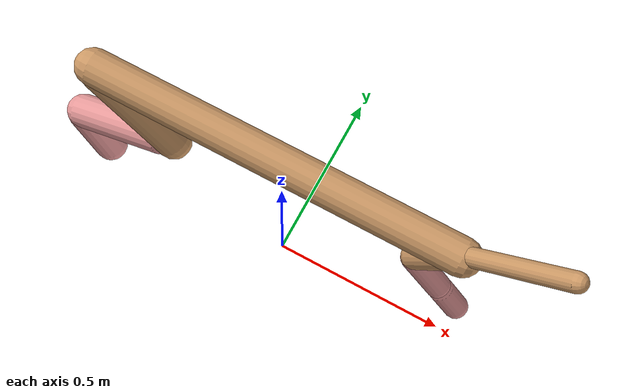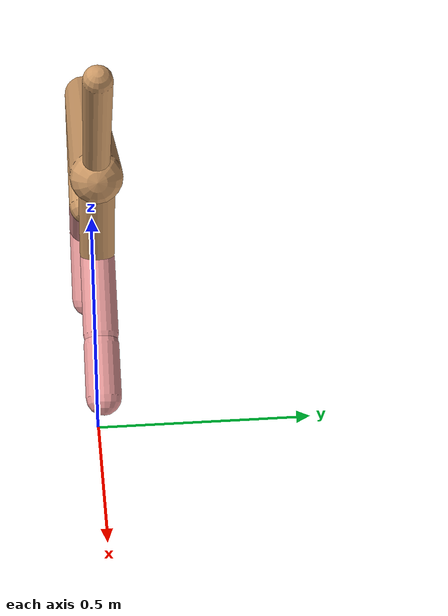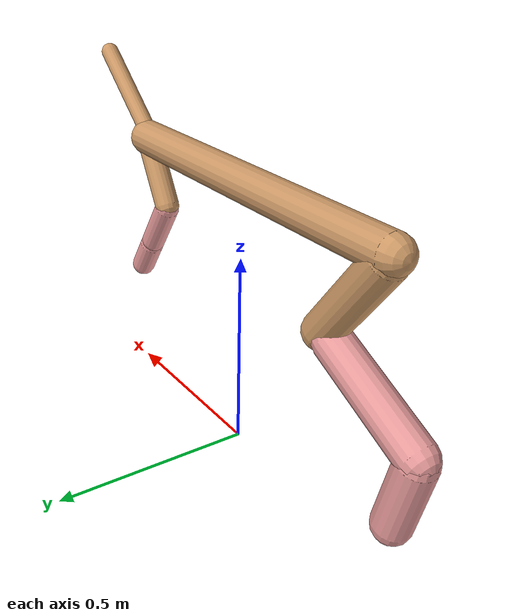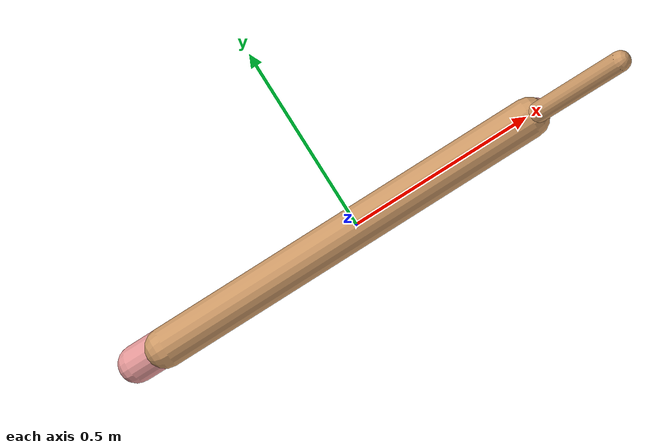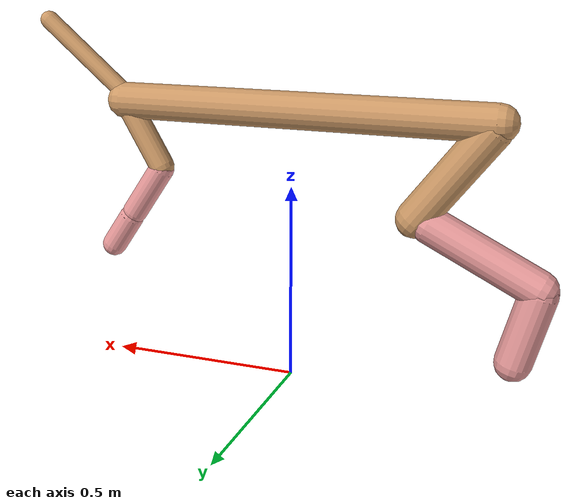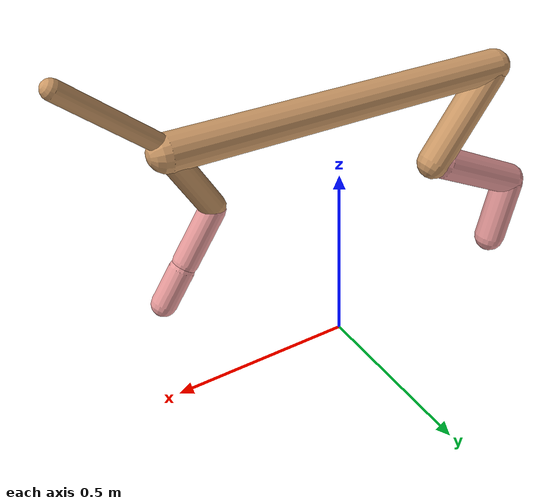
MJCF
<mujoco model="cheetah">
  <compiler angle="radian" coordinate="local" inertiafromgeom="true" settotalmass="14" />
  <default>
    <joint armature=".1" damping=".01" limited="true" solimplimit="0 .8 .03" solreflimit=".02 1" stiffness="8" />
    <geom conaffinity="0" condim="3" contype="1" friction="0.8 .1 .1" rgba="0.8 0.6 .4 1" solimp="0.0 0.8 0.01" solref="0.02 1" />
    <motor ctrllimited="true" ctrlrange="-1 1" />
  </default>
  <size nstack="300000" nuser_geom="1" />
  <option gravity="0 0 -9.81" timestep="0.01" />
  <worldbody>
    <body name="torso" pos="0.0 0.0 0.6927623443211219">
      <joint armature="0" axis="1 0 0" damping="0" limited="false" name="ignorex" pos="0 0 0" stiffness="0" type="slide" />
      <joint armature="0" axis="0 0 1" damping="0" limited="false" name="ignorez" pos="0 0 0" stiffness="0" type="slide" />
      <joint armature="0" axis="0 1 0" damping="0" limited="false" name="ignorey" pos="0 0 0" stiffness="0" type="hinge" />
      <geom fromto="-0.5 0.0 0.0 0.4526734944563274 0.0 0.0" name="torso" size="0.04659457876638631" type="capsule" />
      <geom axisangle="0 1 0 .87" name="head" pos="0.5526734944563273 0.0 0.1" size="0.02347839025324949 0.15" type="capsule" />

      <body name="bthigh" pos="-.5 0 0">
        <joint axis="0 1 0" damping="6" name="bthigh" pos="0 0 0" range="-.52 1.05" stiffness="240" type="hinge" />
        <geom axisangle="0 1 0 -3.8" name="bthigh" pos="0.09945773974588404 0.0 -0.12929506166964927" size="0.04648417371865151 0.14411062705640906" type="capsule" />
        <body name="bshin" pos="0.15891547949176807 0.0 -0.2485901233392985">
          <joint axis="0 1 0" damping="4.5" name="bshin" pos="0 0 0" range="-.785 .785" stiffness="180" type="hinge" />
          <geom axisangle="0 1 0 -2.03" name="bshin" pos="-0.13917709033411652 0.0 -0.06958854516705826" rgba="0.9 0.6 0.6 1" size="0.04648417371865151 0.14907995902387144" type="capsule" />
          <body name="bfoot" pos="-0.27835418066823303 0.0 -0.13917709033411652">
            <joint axis="0 1 0" damping="3" name="bfoot" pos="0 0 0" range="-.4 .785" stiffness="120" type="hinge" />
            <geom axisangle="0 1 0 -.27" name="bfoot" pos="0.029829644268562643 0.0 -0.09644918313501923" rgba="0.9 0.6 0.6 1" size="0.04648417371865151 0.09342344098829278" type="capsule" />
            <inertial mass="10" />
          </body>
        </body>
      </body>
      <body name="fthigh" pos="0.4526734944563273 0.0 0.0">
        <joint axis="0 1 0" damping="4.5" name="fthigh" pos="0 0 0" range="-1.5 0.8" stiffness="180" type="hinge" />
        <geom axisangle="0 1 0 .52" name="fthigh" pos="-0.04989554608158897 0.0 -0.0855352218541525" size="0.0322 0.0931" type="capsule" />
        <body name="fshin" pos="-0.09979109216317794 0.0 -0.171070443708305">
          <joint axis="0 1 0" damping="3" name="fshin" pos="0 0 0" range="-1.2 1.1" stiffness="120" type="hinge" />
          <geom axisangle="0 1 0 -.6" name="fshin" pos="0.046381400387749405 0.0 -0.06422040053688378" rgba="0.9 0.6 0.6 1" size="0.0322 0.07419999999999999" type="capsule" />
          <body name="ffoot" pos="0.09276280077549881 0.0 -0.12844080107376757">
            <joint axis="0 1 0" damping="1.5" name="ffoot" pos="0 0 0" range="-3.1 -0.3" stiffness="60" type="hinge" />
            <geom axisangle="0 1 0 -.6" name="ffoot" pos="0.033644090582416526 0.0 -0.05233525201709238" rgba="0.9 0.6 0.6 1" size="0.0322 0.049" type="capsule" />
            <inertial mass="10" />
          </body>
        </body>
      </body>
    </body>
  </worldbody>
  <actuator>
    <motor gear="120" joint="bthigh" name="bthigh" />
    <motor gear="90" joint="bshin" name="bshin" />
    <motor gear="60" joint="bfoot" name="bfoot" />
    <motor gear="120" joint="fthigh" name="fthigh" />
    <motor gear="60" joint="fshin" name="fshin" />
    <motor gear="30" joint="ffoot" name="ffoot" />
  </actuator>
</mujoco>
